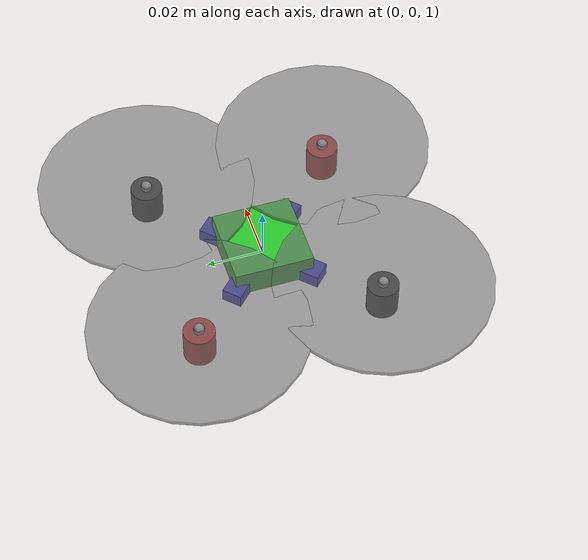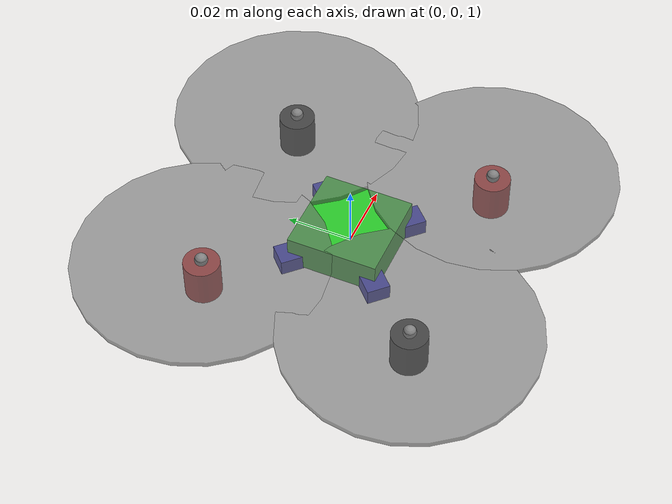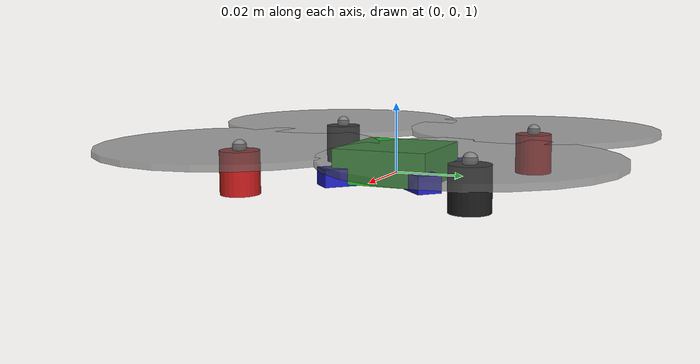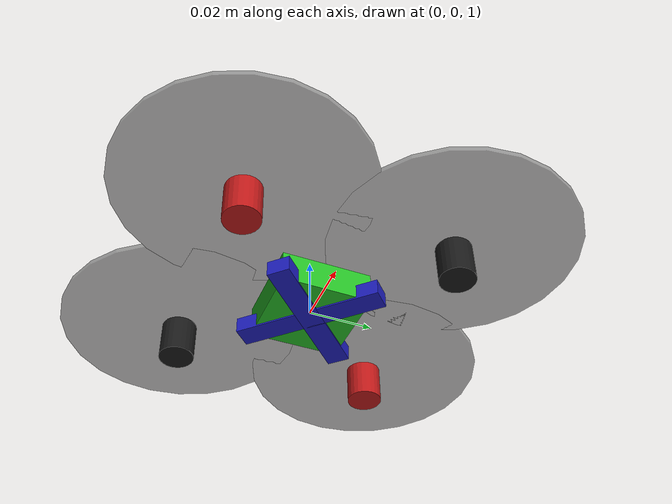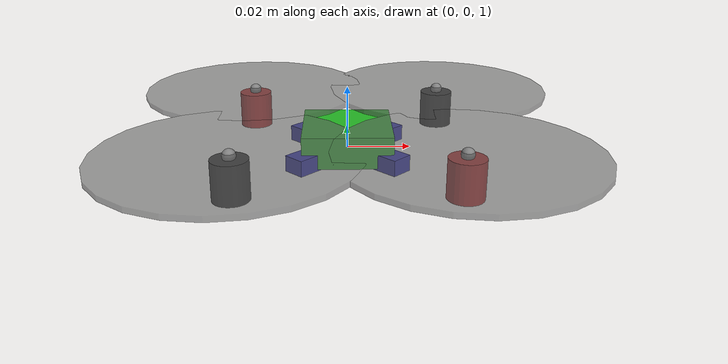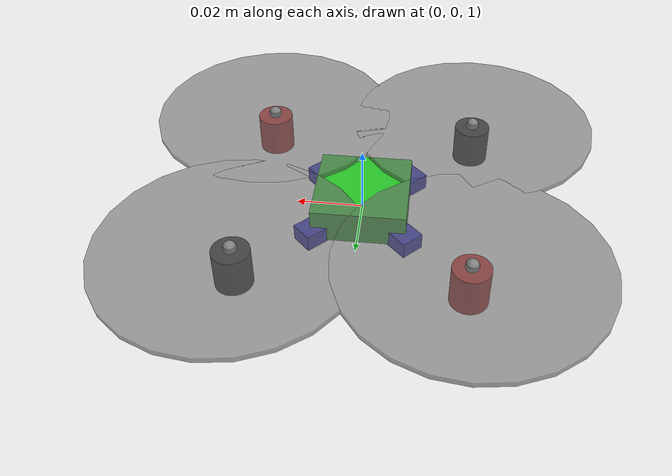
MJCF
<mujoco model="whoop_drone">

  <compiler angle="radian" autolimits="true"/>

  <option timestep="0.002"
          gravity="0 0 -9.81"
          integrator="RK4"
          cone="elliptic"
          impratio="10"/>

  <default>
    <geom contype="1" conaffinity="1" condim="3"
          friction="0.7 0.005 0.0001" solimp="0.9 0.95 0.001"/>
    <joint damping="0.0001"/>
  </default>

  <asset>
    <texture type="skybox" builtin="gradient"
             rgb1=".4 .6 .8" rgb2="0 0 0"
             width="512" height="512"/>
    <texture name="grid" type="2d" builtin="checker"
             rgb1=".15 .25 .35" rgb2=".25 .35 .45"
             width="512" height="512" mark="edge" markrgb=".3 .4 .5"/>
    <material name="grid" texture="grid"
              texrepeat="4 4" texuniform="true" reflectance="0.1"/>
    <material name="frame_mat"  rgba="0.12 0.12 0.75 1.0"/>
    <material name="fc_mat"     rgba="0.15 0.75 0.15 1.0"/>
    <material name="motor_ccw"  rgba="0.1 0.1 0.1 1.0"/>
    <material name="motor_cw"   rgba="0.75 0.1 0.1 1.0"/>
    <material name="prop_mat"   rgba="0.4 0.4 0.4 0.6"/>
  </asset>

  <worldbody>
    <light name="sun"    pos="0 0 5"   dir="0 0 -1"  diffuse="0.8 0.8 0.8" specular="0.2 0.2 0.2"/>
    <light name="fill"   pos="3 -3 4"  dir="-1 1 -2" diffuse="0.3 0.3 0.3"/>

    <!-- Ground plane -->
    <geom name="floor" type="plane" size="25 25 0.1"
          material="grid" zaxis="0 0 1" contype="1" conaffinity="1"/>

    <body name="drone" pos="0 0 1.0">
      <freejoint name="drone_freejoint"/>

      <inertial mass="0.050"
                pos="0 0 0"
                diaginertia="2.5e-5 2.5e-5 4.0e-5"/>

      <!-- ---- Frame arms (X configuration, ±45°) ---- -->
      <!-- arm from BL(-,+) to FR(+,-) direction -->
      <geom name="arm_1" type="box"
            size="0.0230 0.0035 0.0025"
            euler="0 0  0.7854"
            material="frame_mat" contype="0" conaffinity="0"/>
      <!-- arm from FL(+,+) to BR(-,-) direction -->
      <geom name="arm_2" type="box"
            size="0.0230 0.0035 0.0025"
            euler="0 0 -0.7854"
            material="frame_mat" contype="0" conaffinity="0"/>

      <!-- Central FC/ESC stack (visual) -->
      <geom name="fc" type="box"
            size="0.014 0.014 0.005"
            pos="0 0 0.003"
            material="fc_mat" contype="0" conaffinity="0"/>

      <!-- ============================================================
           Motor FL  (+x, +y)  CCW  – black caps
           ============================================================ -->
      <geom name="motor_fl" type="cylinder"
            size="0.0055 0.006"
            pos="0.0325 0.0325 0.003"
            material="motor_ccw"/>
      <!-- Propeller FL (visual, no collision) -->
      <geom name="prop_fl" type="cylinder"
            size="0.038 0.0008"
            pos="0.0325 0.0325 0.010"
            material="prop_mat"
            contype="0" conaffinity="0"/>
      <!-- Thrust application site for FL -->
      <site name="site_fl" pos="0.0325 0.0325 0.010"
            zaxis="0 0 1" size="0.002"/>

      <!-- ============================================================
           Motor FR  (+x, -y)  CW   – red caps
           ============================================================ -->
      <geom name="motor_fr" type="cylinder"
            size="0.0055 0.006"
            pos="0.0325 -0.0325 0.003"
            material="motor_cw"/>
      <geom name="prop_fr" type="cylinder"
            size="0.038 0.0008"
            pos="0.0325 -0.0325 0.010"
            material="prop_mat"
            contype="0" conaffinity="0"/>
      <site name="site_fr" pos="0.0325 -0.0325 0.010"
            zaxis="0 0 1" size="0.002"/>

      <!-- ============================================================
           Motor BL  (-x, +y)  CW   – red caps
           ============================================================ -->
      <geom name="motor_bl" type="cylinder"
            size="0.0055 0.006"
            pos="-0.0325 0.0325 0.003"
            material="motor_cw"/>
      <geom name="prop_bl" type="cylinder"
            size="0.038 0.0008"
            pos="-0.0325 0.0325 0.010"
            material="prop_mat"
            contype="0" conaffinity="0"/>
      <site name="site_bl" pos="-0.0325 0.0325 0.010"
            zaxis="0 0 1" size="0.002"/>

      <!-- ============================================================
           Motor BR  (-x, -y)  CCW  – black caps
           ============================================================ -->
      <geom name="motor_br" type="cylinder"
            size="0.0055 0.006"
            pos="-0.0325 -0.0325 0.003"
            material="motor_ccw"/>
      <geom name="prop_br" type="cylinder"
            size="0.038 0.0008"
            pos="-0.0325 -0.0325 0.010"
            material="prop_mat"
            contype="0" conaffinity="0"/>
      <site name="site_br" pos="-0.0325 -0.0325 0.010"
            zaxis="0 0 1" size="0.002"/>

      <!-- IMU site at drone CoM -->
      <site name="imu" pos="0 0 0" zaxis="0 0 1" size="0.001"/>
    </body>
  </worldbody>

  <actuator>
    <!-- FL: CCW → +tz -->
    <general name="motor_fl" site="site_fl"
             gear="0 0 0.245 0 0  0.013"
             ctrllimited="true" ctrlrange="0 1"/>

    <!-- FR: CW  → -tz -->
    <general name="motor_fr" site="site_fr"
             gear="0 0 0.245 0 0 -0.013"
             ctrllimited="true" ctrlrange="0 1"/>

    <!-- BL: CW  → -tz -->
    <general name="motor_bl" site="site_bl"
             gear="0 0 0.245 0 0 -0.013"
             ctrllimited="true" ctrlrange="0 1"/>

    <!-- BR: CCW → +tz -->
    <general name="motor_br" site="site_br"
             gear="0 0 0.245 0 0  0.013"
             ctrllimited="true" ctrlrange="0 1"/>
  </actuator>

  <!-- ================================================================
       Sensors (mirrors GY-91 outputs)
       ================================================================ -->
  <sensor>
    <!-- Accelerometer & gyro at IMU site (body frame) -->
    <accelerometer name="imu_accel" site="imu"/>
    <gyro          name="imu_gyro"  site="imu"/>

    <!-- Ground truth state (for RL observation) -->
    <framepos    name="drone_pos"     objtype="body" objname="drone"/>
    <framequat   name="drone_quat"    objtype="body" objname="drone"/>
    <framelinvel name="drone_linvel"  objtype="body" objname="drone"/>
    <frameangvel name="drone_angvel"  objtype="body" objname="drone"/>
  </sensor>

</mujoco>
